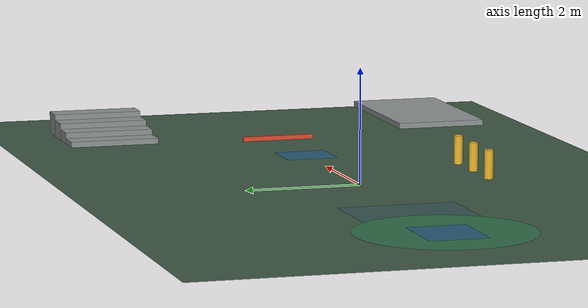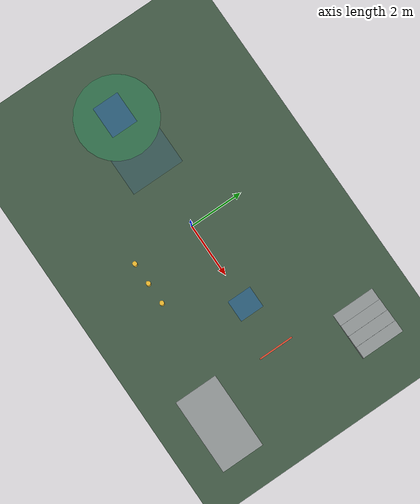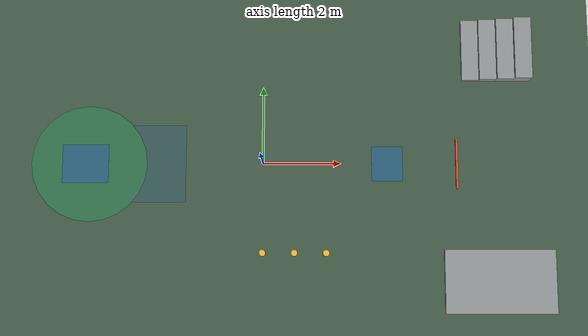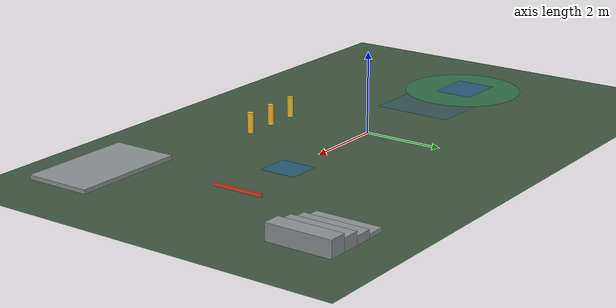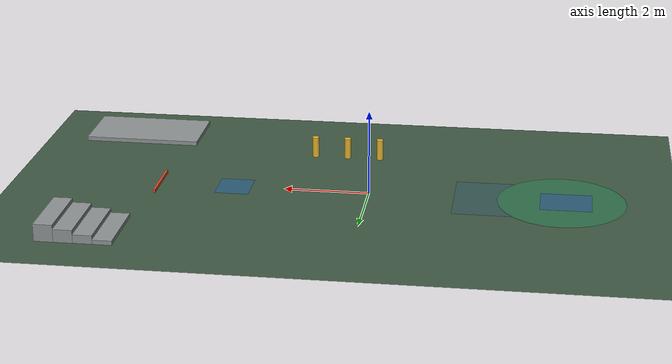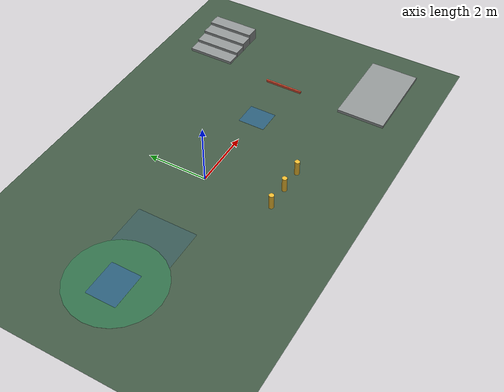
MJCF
<mujoco model="yard">
  <statistic center="0 0 0.3" extent="9"/>
  <option timestep="0.002" gravity="0 0 -9.81"/>
  <visual>
    <headlight ambient="0.25 0.25 0.25" diffuse="0.55 0.55 0.55" specular="0.08 0.08 0.08"/>
    <rgba haze="0.75 0.82 0.88 1"/>
    <global azimuth="135" elevation="-28"/>
  </visual>
  <asset>
    <texture type="skybox" builtin="gradient" rgb1="0.62 0.74 0.86" rgb2="0.96 0.97 0.94" width="512" height="3072"/>
    <texture name="yard_ground" type="2d" builtin="checker" rgb1="0.22 0.31 0.24" rgb2="0.28 0.38 0.29" mark="edge" markrgb="0.45 0.55 0.44" width="256" height="256"/>
    <material name="yard_ground" texture="yard_ground" texrepeat="16 16" texuniform="true" reflectance="0.02"/>
    <material name="zone_green" rgba="0.16 0.58 0.36 0.45"/>
    <material name="zone_blue" rgba="0.12 0.42 0.72 0.50"/>
    <material name="obstacle" rgba="0.88 0.29 0.18 1"/>
    <material name="concrete" rgba="0.56 0.58 0.58 1"/>
  </asset>
  <worldbody>
    <light directional="true" pos="-3 -4 8" dir="0.25 0.3 -1" diffuse="0.72 0.70 0.65" specular="0.10 0.10 0.10"/>
    <light directional="true" pos="5 4 5" dir="-0.4 -0.3 -1" diffuse="0.22 0.27 0.32" specular="0 0 0"/>
    <geom name="yard_floor_visual" type="plane" size="12 8 0.05" group="1" contype="0" conaffinity="0" material="yard_ground"/>
    <geom name="yard_floor_collision" type="plane" size="12 8 0.05" group="3" contype="1" conaffinity="1" friction="1.2 0.01 0.001" rgba="0 0 0 0.001"/>

    <geom name="performance_zone" type="cylinder" pos="-4.5 0 0.004" size="1.5 0.004" group="1" contype="0" conaffinity="0" material="zone_green"/>
    <geom name="handstand_corridor" type="box" pos="-3.75 0 0.003" size="1.75 1.0 0.003" group="1" contype="0" conaffinity="0" rgba="0.10 0.35 0.62 0.18"/>
    <geom name="handstand_start_zone" type="box" pos="-4.6 0 0.006" size="0.6 0.5 0.006" group="1" contype="0" conaffinity="0" material="zone_blue"/>
    <geom name="jump_zone" type="box" pos="3.2 0 0.005" size="0.4 0.45 0.005" group="1" contype="0" conaffinity="0" material="zone_blue"/>
    <geom name="yard_jump_hurdle_visual" type="box" pos="5.0 0 0.04" size="0.025 0.65 0.04" group="1" contype="0" conaffinity="0" material="obstacle"/>
    <geom name="yard_jump_hurdle_collision" type="box" pos="5.0 0 0.04" size="0.025 0.65 0.04" group="3" contype="1" conaffinity="1" friction="0.9 0.01 0.001" rgba="0 0 0 0.001"/>

    <body name="yard_stairs" pos="5.4 3.0 0">
      <geom type="box" pos="0.00 0 0.05" size="0.22 0.8 0.05" material="concrete"/>
      <geom type="box" pos="0.44 0 0.10" size="0.22 0.8 0.10" material="concrete"/>
      <geom type="box" pos="0.88 0 0.15" size="0.22 0.8 0.15" material="concrete"/>
      <geom type="box" pos="1.32 0 0.20" size="0.22 0.8 0.20" material="concrete"/>
    </body>
    <body name="yard_ramp" pos="6 -3 0.22" euler="0 -0.17 0">
      <geom type="box" size="1.4 0.8 0.05" material="concrete"/>
    </body>
    <geom type="cylinder" pos="0 -2.3 0.25" size="0.08 0.25" rgba="0.92 0.72 0.18 1"/>
    <geom type="cylinder" pos="0.8 -2.3 0.25" size="0.08 0.25" rgba="0.92 0.72 0.18 1"/>
    <geom type="cylinder" pos="1.6 -2.3 0.25" size="0.08 0.25" rgba="0.92 0.72 0.18 1"/>
  </worldbody>
</mujoco>
